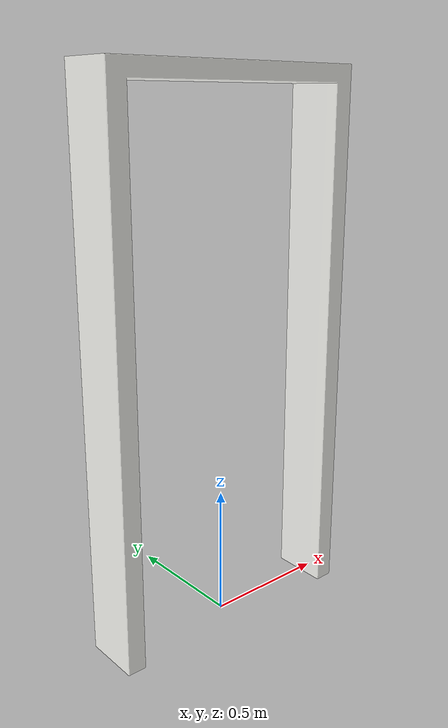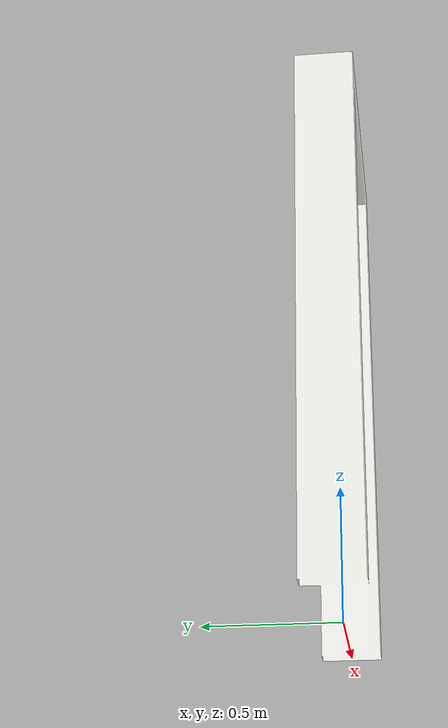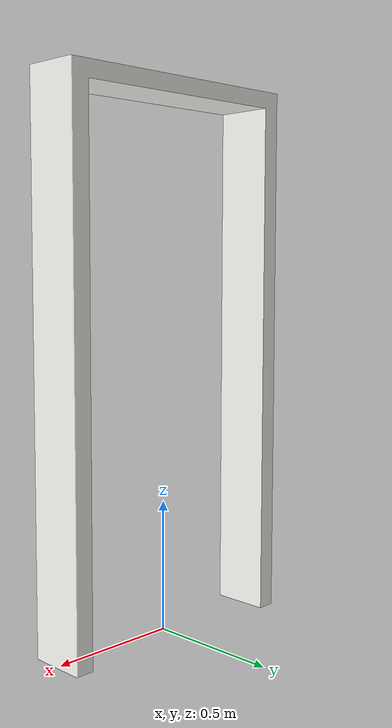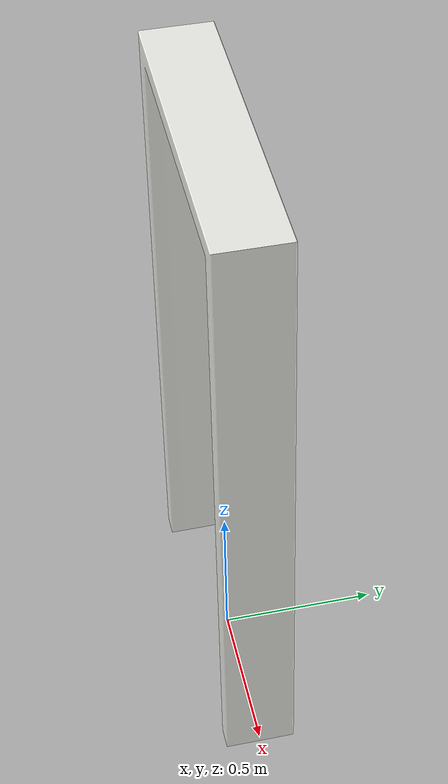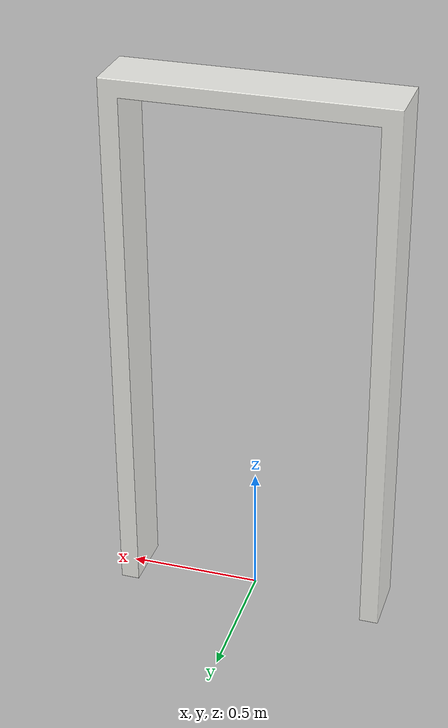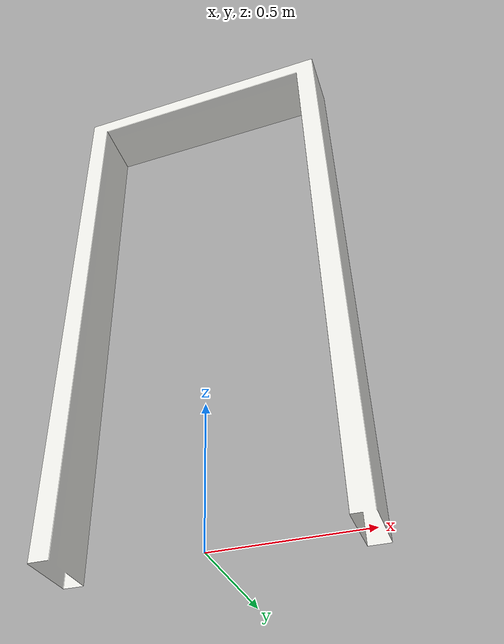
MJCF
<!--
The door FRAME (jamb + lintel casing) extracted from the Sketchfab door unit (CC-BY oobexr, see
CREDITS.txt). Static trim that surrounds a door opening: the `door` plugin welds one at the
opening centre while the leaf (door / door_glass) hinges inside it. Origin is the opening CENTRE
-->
<mujoco model="door_frame">
  <compiler meshdir="meshes" texturedir="meshes"/>
  <asset>
    <mesh name="door_frame" file="door_frame.obj"/>
    <material name="door_frame" rgba="0.92 0.92 0.90 1"/>
  </asset>
  <worldbody>
    <body name="frame">
      <geom type="mesh" mesh="door_frame" material="door_frame" contype="0" conaffinity="0"/>
    </body>
  </worldbody>
</mujoco>
